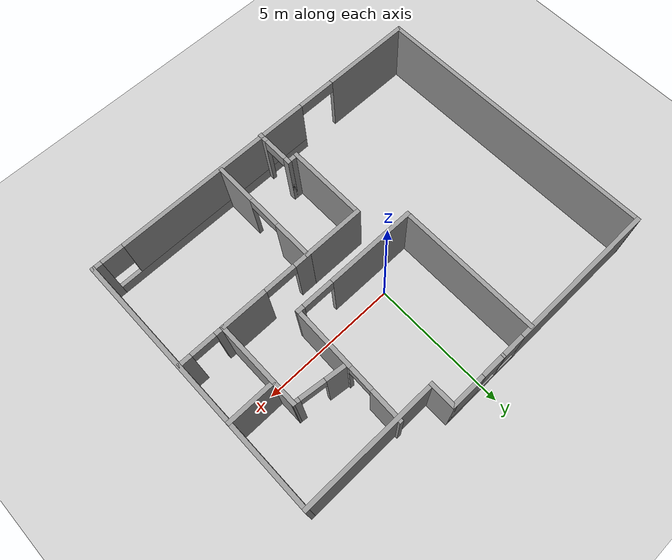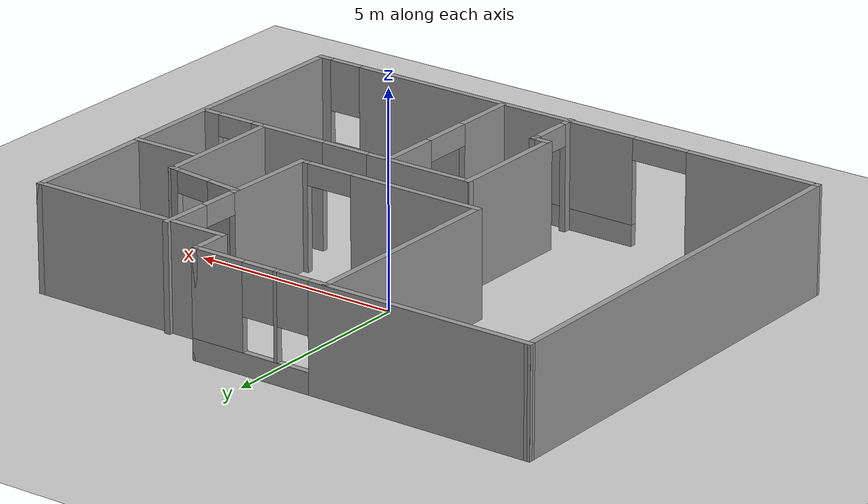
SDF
<sdf version="1.7">
 <world name="default">
  <light name="sun" type="directional">
   <pose>0 0 10 0 -0 0</pose>
   <diffuse>0.8 0.8 0.8 1</diffuse>
   <specular>0.2 0.2 0.2 1</specular>
   <attenuation>
    <range>1000</range>
    <constant>0.9</constant>
    <linear>0.01</linear>
    <quadratic>0.001</quadratic>
   </attenuation>
   <direction>-0.5 0.1 -0.9</direction>
   <spot><inner_angle>0</inner_angle><outer_angle>0</outer_angle><falloff>0</falloff></spot>
  </light>
  <model name="ground_plane">
   <static>1</static>
   <link name="link">
    <collision name="collision">
     <geometry><plane><normal>0 0 1</normal><size>100 100</size></plane></geometry>
     <surface>
      <contact><collide_bitmask>65535</collide_bitmask></contact>
      <friction><ode><mu>100</mu><mu2>50</mu2></ode></friction>
     </surface>
    </collision>
    <visual name="visual">
     <cast_shadows>0</cast_shadows>
     <geometry><plane><normal>0 0 1</normal><size>100 100</size></plane></geometry>
     <material>
      <script><uri>file://media/materials/scripts/gazebo.material</uri><name>Gazebo/Grey</name></script>
     </material>
    </visual>
   </link>
  </model>
  <gravity>0 0 -9.8</gravity>
  <magnetic_field>6e-06 2.3e-05 -4.2e-05</magnetic_field>
  <atmosphere type="adiabatic"/>
  <physics type="ode">
   <max_step_size>0.001</max_step_size>
   <real_time_factor>1</real_time_factor>
   <real_time_update_rate>1000</real_time_update_rate>
  </physics>
  <scene><ambient>0.4 0.4 0.4 1</ambient><background>0.7 0.7 0.7 1</background><shadows>1</shadows></scene>
  <spherical_coordinates>
   <surface_model>EARTH_WGS84</surface_model>
   <latitude_deg>0</latitude_deg>
   <longitude_deg>0</longitude_deg>
   <elevation>0</elevation>
   <heading_deg>0</heading_deg>
  </spherical_coordinates>
  <model name="map1">
   <pose>-0.129397 -0.877177 0 0 -0 0</pose>
   <link name="Wall_0">
    <pose>-2.42464 5.24297 0 0 -0 0</pose>
    <visual name="Wall_0_Visual_0">
     <pose>-1.5023 0 1.25 0 -0 0</pose>
     <geometry><box><size>5.49541 0.15 2.5</size></box></geometry>
     <material>
      <script><uri>file://media/materials/scripts/gazebo.material</uri><name>Gazebo/Grey</name></script>
      <ambient>1 1 1 1</ambient>
     </material>
     <meta><layer>0</layer></meta>
    </visual>
    <collision name="Wall_0_Collision_0">
     <geometry><box><size>5.49541 0.15 2.5</size></box></geometry>
     <pose>-1.5023 0 1.25 0 -0 0</pose>
    </collision>
    <visual name="Wall_0_Visual_1">
     <pose>2.7477 0 0.25 0 -0 0</pose>
     <geometry><box><size>3.00459 0.15 0.5</size></box></geometry>
     <material>
      <script><uri>file://media/materials/scripts/gazebo.material</uri><name>Gazebo/Grey</name></script>
      <ambient>1 1 1 1</ambient>
     </material>
     <meta><layer>0</layer></meta>
    </visual>
    <collision name="Wall_0_Collision_1">
     <geometry><box><size>3.00459 0.15 0.5</size></box></geometry>
     <pose>2.7477 0 0.25 0 -0 0</pose>
    </collision>
    <visual name="Wall_0_Visual_2">
     <pose>2.08896 0 1.5 0 -0 0</pose>
     <geometry><box><size>0.087117 0.15 2</size></box></geometry>
     <material>
      <script><uri>file://media/materials/scripts/gazebo.material</uri><name>Gazebo/Grey</name></script>
      <ambient>1 1 1 1</ambient>
     </material>
     <meta><layer>0</layer></meta>
    </visual>
    <collision name="Wall_0_Collision_2">
     <geometry><box><size>0.087117 0.15 2</size></box></geometry>
     <pose>2.08896 0 1.5 0 -0 0</pose>
    </collision>
    <visual name="Wall_0_Visual_3">
     <pose>3.59126 0 1.5 0 -0 0</pose>
     <geometry><box><size>1.31748 0.15 2</size></box></geometry>
     <material>
      <script><uri>file://media/materials/scripts/gazebo.material</uri><name>Gazebo/Grey</name></script>
      <ambient>1 1 1 1</ambient>
     </material>
     <meta><layer>0</layer></meta>
    </visual>
    <collision name="Wall_0_Collision_3">
     <geometry><box><size>1.31748 0.15 2</size></box></geometry>
     <pose>3.59126 0 1.5 0 -0 0</pose>
    </collision>
    <visual name="Wall_0_Visual_4">
     <pose>1.64541 0 1.9 0 -0 0</pose>
     <geometry><box><size>0.8 0.15 1.2</size></box></geometry>
     <material>
      <script><uri>file://media/materials/scripts/gazebo.material</uri><name>Gazebo/Grey</name></script>
      <ambient>1 1 1 1</ambient>
     </material>
     <meta><layer>0</layer></meta>
    </visual>
    <collision name="Wall_0_Collision_4">
     <geometry><box><size>0.8 0.15 1.2</size></box></geometry>
     <pose>1.64541 0 1.9 0 -0 0</pose>
    </collision>
    <visual name="Wall_0_Visual_5">
     <pose>2.53252 0 1.9 0 -0 0</pose>
     <geometry><box><size>0.8 0.15 1.2</size></box></geometry>
     <material>
      <script><uri>file://media/materials/scripts/gazebo.material</uri><name>Gazebo/Grey</name></script>
      <ambient>1 1 1 1</ambient>
     </material>
     <meta><layer>0</layer></meta>
    </visual>
    <collision name="Wall_0_Collision_5">
     <geometry><box><size>0.8 0.15 1.2</size></box></geometry>
     <pose>2.53252 0 1.9 0 -0 0</pose>
    </collision>
   </link>
   <link name="Wall_1">
    <collision name="Wall_1_Collision">
     <geometry><box><size>1 0.15 2.5</size></box></geometry>
     <pose>0 0 1.25 0 -0 0</pose>
    </collision>
    <visual name="Wall_1_Visual">
     <pose>0 0 1.25 0 -0 0</pose>
     <geometry><box><size>1 0.15 2.5</size></box></geometry>
     <material>
      <script><uri>file://media/materials/scripts/gazebo.material</uri><name>Gazebo/Grey</name></script>
      <ambient>1 1 1 1</ambient>
     </material>
     <meta><layer>0</layer></meta>
    </visual>
    <pose>1.75036 4.81797 0 0 -0 -1.5708</pose>
   </link>
   <link name="Wall_12">
    <collision name="Wall_12_Collision">
     <geometry><box><size>3.25 0.15 2.5</size></box></geometry>
     <pose>0 0 1.25 0 -0 0</pose>
    </collision>
    <visual name="Wall_12_Visual">
     <pose>0 0 1.25 0 -0 0</pose>
     <geometry><box><size>3.25 0.15 2.5</size></box></geometry>
     <material>
      <script><uri>file://media/materials/scripts/gazebo.material</uri><name>Gazebo/Grey</name></script>
      <ambient>1 1 1 1</ambient>
     </material>
     <meta><layer>0</layer></meta>
    </visual>
    <pose>4.94746 0.506312 0 0 -0 1.5708</pose>
   </link>
   <link name="Wall_14">
    <collision name="Wall_14_Collision">
     <geometry><box><size>1.75 0.15 2.5</size></box></geometry>
     <pose>0 0 1.25 0 -0 0</pose>
    </collision>
    <visual name="Wall_14_Visual">
     <pose>0 0 1.25 0 -0 0</pose>
     <geometry><box><size>1.75 0.15 2.5</size></box></geometry>
     <material>
      <script><uri>file://media/materials/scripts/gazebo.material</uri><name>Gazebo/Grey</name></script>
      <ambient>1 1 1 1</ambient>
     </material>
     <meta><layer>0</layer></meta>
    </visual>
    <pose>5.79405 1.20506 0 0 -0 0</pose>
   </link>
   <link name="Wall_2">
    <collision name="Wall_2_Collision">
     <geometry><box><size>5 0.15 2.5</size></box></geometry>
     <pose>0 0 1.25 0 -0 0</pose>
    </collision>
    <visual name="Wall_2_Visual">
     <pose>0 0 1.25 0 -0 0</pose>
     <geometry><box><size>5 0.15 2.5</size></box></geometry>
     <material>
      <script><uri>file://media/materials/scripts/gazebo.material</uri><name>Gazebo/Grey</name></script>
      <ambient>1 1 1 1</ambient>
     </material>
     <meta><layer>0</layer></meta>
    </visual>
    <pose>4.17536 4.39297 0 0 -0 0</pose>
   </link>
   <link name="Wall_26">
    <pose>5.74746 -1.04369 0 0 -0 0</pose>
    <visual name="Wall_26_Visual_0">
     <pose>-0.688017 0 1.25 0 -0 0</pose>
     <geometry><box><size>0.373966 0.15 2.5</size></box></geometry>
     <material>
      <script><uri>file://media/materials/scripts/gazebo.material</uri><name>Gazebo/Grey</name></script>
      <ambient>1 1 1 1</ambient>
     </material>
     <meta><layer>0</layer></meta>
    </visual>
    <collision name="Wall_26_Collision_0">
     <geometry><box><size>0.373966 0.15 2.5</size></box></geometry>
     <pose>-0.688017 0 1.25 0 -0 0</pose>
    </collision>
    <visual name="Wall_26_Visual_1">
     <pose>0.636983 0 1.25 0 -0 0</pose>
     <geometry><box><size>0.476034 0.15 2.5</size></box></geometry>
     <material>
      <script><uri>file://media/materials/scripts/gazebo.material</uri><name>Gazebo/Grey</name></script>
      <ambient>1 1 1 1</ambient>
     </material>
     <meta><layer>0</layer></meta>
    </visual>
    <collision name="Wall_26_Collision_1">
     <geometry><box><size>0.476034 0.15 2.5</size></box></geometry>
     <pose>0.636983 0 1.25 0 -0 0</pose>
    </collision>
    <visual name="Wall_26_Visual_2">
     <pose>-0.051034 0 2.25 0 -0 0</pose>
     <geometry><box><size>0.9 0.15 0.5</size></box></geometry>
     <material>
      <script><uri>file://media/materials/scripts/gazebo.material</uri><name>Gazebo/Grey</name></script>
      <ambient>1 1 1 1</ambient>
     </material>
     <meta><layer>0</layer></meta>
    </visual>
    <collision name="Wall_26_Collision_2">
     <geometry><box><size>0.9 0.15 0.5</size></box></geometry>
     <pose>-0.051034 0 2.25 0 -0 0</pose>
    </collision>
   </link>
   <link name="Wall_3">
    <collision name="Wall_3_Collision">
     <geometry><box><size>9.75 0.15 2.5</size></box></geometry>
     <pose>0 0 1.25 0 -0 0</pose>
    </collision>
    <visual name="Wall_3_Visual">
     <pose>0 0 1.25 0 -0 0</pose>
     <geometry><box><size>9.75 0.15 2.5</size></box></geometry>
     <material>
      <script><uri>file://media/materials/scripts/gazebo.material</uri><name>Gazebo/Grey</name></script>
      <ambient>1 1 1 1</ambient>
     </material>
     <meta><layer>0</layer></meta>
    </visual>
    <pose>6.60036 -0.407026 0 0 -0 -1.5708</pose>
   </link>
   <link name="Wall_32">
    <pose>3.07008 2.29651 0 0 -0 -1.59502</pose>
    <visual name="Wall_32_Visual_0">
     <pose>-1.64148 0 1.25 0 -0 0</pose>
     <geometry><box><size>1.23658 0.15 2.5</size></box></geometry>
     <material>
      <script><uri>file://media/materials/scripts/gazebo.material</uri><name>Gazebo/Grey</name></script>
      <ambient>1 1 1 1</ambient>
     </material>
     <meta><layer>0</layer></meta>
    </visual>
    <collision name="Wall_32_Collision_0">
     <geometry><box><size>1.23658 0.15 2.5</size></box></geometry>
     <pose>-1.64148 0 1.25 0 -0 0</pose>
    </collision>
    <visual name="Wall_32_Visual_1">
     <pose>1.06829 0 1.25 0 -0 0</pose>
     <geometry><box><size>2.38296 0.15 2.5</size></box></geometry>
     <material>
      <script><uri>file://media/materials/scripts/gazebo.material</uri><name>Gazebo/Grey</name></script>
      <ambient>1 1 1 1</ambient>
     </material>
     <meta><layer>0</layer></meta>
    </visual>
    <collision name="Wall_32_Collision_1">
     <geometry><box><size>2.38296 0.15 2.5</size></box></geometry>
     <pose>1.06829 0 1.25 0 -0 0</pose>
    </collision>
    <visual name="Wall_32_Visual_2">
     <pose>-0.573189 0 2.25 0 -0 0</pose>
     <geometry><box><size>0.9 0.15 0.5</size></box></geometry>
     <material>
      <script><uri>file://media/materials/scripts/gazebo.material</uri><name>Gazebo/Grey</name></script>
      <ambient>1 1 1 1</ambient>
     </material>
     <meta><layer>0</layer></meta>
    </visual>
    <collision name="Wall_32_Collision_2">
     <geometry><box><size>0.9 0.15 0.5</size></box></geometry>
     <pose>-0.573189 0 2.25 0 -0 0</pose>
    </collision>
   </link>
   <link name="Wall_34">
    <pose>4.01774 2.1666 0 0 -0 -0.118075</pose>
    <visual name="Wall_34_Visual_0">
     <pose>-0.589232 0 1.25 0 -0 0</pose>
     <geometry><box><size>0.844015 0.15 2.5</size></box></geometry>
     <material>
      <script><uri>file://media/materials/scripts/gazebo.material</uri><name>Gazebo/Grey</name></script>
      <ambient>1 1 1 1</ambient>
     </material>
     <meta><layer>0</layer></meta>
    </visual>
    <collision name="Wall_34_Collision_0">
     <geometry><box><size>0.844015 0.15 2.5</size></box></geometry>
     <pose>-0.589232 0 1.25 0 -0 0</pose>
    </collision>
    <visual name="Wall_34_Visual_1">
     <pose>0.872007 0 1.25 0 -0 0</pose>
     <geometry><box><size>0.278464 0.15 2.5</size></box></geometry>
     <material>
      <script><uri>file://media/materials/scripts/gazebo.material</uri><name>Gazebo/Grey</name></script>
      <ambient>1 1 1 1</ambient>
     </material>
     <meta><layer>0</layer></meta>
    </visual>
    <collision name="Wall_34_Collision_1">
     <geometry><box><size>0.278464 0.15 2.5</size></box></geometry>
     <pose>0.872007 0 1.25 0 -0 0</pose>
    </collision>
    <visual name="Wall_34_Visual_2">
     <pose>0.282775 0 2.25 0 -0 0</pose>
     <geometry><box><size>0.9 0.15 0.5</size></box></geometry>
     <material>
      <script><uri>file://media/materials/scripts/gazebo.material</uri><name>Gazebo/Grey</name></script>
      <ambient>1 1 1 1</ambient>
     </material>
     <meta><layer>0</layer></meta>
    </visual>
    <collision name="Wall_34_Collision_2">
     <geometry><box><size>0.9 0.15 0.5</size></box></geometry>
     <pose>0.282775 0 2.25 0 -0 0</pose>
    </collision>
   </link>
   <link name="Wall_36">
    <pose>3.27246 -1.04369 0 0 -0 3.14159</pose>
    <visual name="Wall_36_Visual_0">
     <pose>-0.891328 0 1.25 0 -0 0</pose>
     <geometry><box><size>1.71734 0.15 2.5</size></box></geometry>
     <material>
      <script><uri>file://media/materials/scripts/gazebo.material</uri><name>Gazebo/Grey</name></script>
      <ambient>1 1 1 1</ambient>
     </material>
     <meta><layer>0</layer></meta>
    </visual>
    <collision name="Wall_36_Collision_0">
     <geometry><box><size>1.71734 0.15 2.5</size></box></geometry>
     <pose>-0.891328 0 1.25 0 -0 0</pose>
    </collision>
    <visual name="Wall_36_Visual_1">
     <pose>1.44633 0 1.25 0 -0 0</pose>
     <geometry><box><size>0.607343 0.15 2.5</size></box></geometry>
     <material>
      <script><uri>file://media/materials/scripts/gazebo.material</uri><name>Gazebo/Grey</name></script>
      <ambient>1 1 1 1</ambient>
     </material>
     <meta><layer>0</layer></meta>
    </visual>
    <collision name="Wall_36_Collision_1">
     <geometry><box><size>0.607343 0.15 2.5</size></box></geometry>
     <pose>1.44633 0 1.25 0 -0 0</pose>
    </collision>
    <visual name="Wall_36_Visual_2">
     <pose>0.555001 0 2.25 0 -0 0</pose>
     <geometry><box><size>1.17531 0.15 0.5</size></box></geometry>
     <material>
      <script><uri>file://media/materials/scripts/gazebo.material</uri><name>Gazebo/Grey</name></script>
      <ambient>1 1 1 1</ambient>
     </material>
     <meta><layer>0</layer></meta>
    </visual>
    <collision name="Wall_36_Collision_2">
     <geometry><box><size>1.17531 0.15 0.5</size></box></geometry>
     <pose>0.555001 0 2.25 0 -0 0</pose>
    </collision>
   </link>
   <link name="Wall_37">
    <pose>1.59746 -3.09369 0 0 -0 -1.5708</pose>
    <visual name="Wall_37_Visual_0">
     <pose>-1.37649 0 1.25 0 -0 0</pose>
     <geometry><box><size>1.49701 0.15 2.5</size></box></geometry>
     <material>
      <script><uri>file://media/materials/scripts/gazebo.material</uri><name>Gazebo/Grey</name></script>
      <ambient>1 1 1 1</ambient>
     </material>
     <meta><layer>0</layer></meta>
    </visual>
    <collision name="Wall_37_Collision_0">
     <geometry><box><size>1.49701 0.15 2.5</size></box></geometry>
     <pose>-1.37649 0 1.25 0 -0 0</pose>
    </collision>
    <visual name="Wall_37_Visual_1">
     <pose>1.35592 0 1.25 0 -0 0</pose>
     <geometry><box><size>1.53817 0.15 2.5</size></box></geometry>
     <material>
      <script><uri>file://media/materials/scripts/gazebo.material</uri><name>Gazebo/Grey</name></script>
      <ambient>1 1 1 1</ambient>
     </material>
     <meta><layer>0</layer></meta>
    </visual>
    <collision name="Wall_37_Collision_1">
     <geometry><box><size>1.53817 0.15 2.5</size></box></geometry>
     <pose>1.35592 0 1.25 0 -0 0</pose>
    </collision>
    <visual name="Wall_37_Visual_2">
     <pose>-0.020576 0 2.25 0 -0 0</pose>
     <geometry><box><size>1.21482 0.15 0.5</size></box></geometry>
     <material>
      <script><uri>file://media/materials/scripts/gazebo.material</uri><name>Gazebo/Grey</name></script>
      <ambient>1 1 1 1</ambient>
     </material>
     <meta><layer>0</layer></meta>
    </visual>
    <collision name="Wall_37_Collision_2">
     <geometry><box><size>1.21482 0.15 0.5</size></box></geometry>
     <pose>-0.020576 0 2.25 0 -0 0</pose>
    </collision>
   </link>
   <link name="Wall_39">
    <collision name="Wall_39_Collision">
     <geometry><box><size>2.25 0.15 2.5</size></box></geometry>
     <pose>0 0 1.25 0 -0 0</pose>
    </collision>
    <visual name="Wall_39_Visual">
     <pose>0 0 1.25 0 -0 0</pose>
     <geometry><box><size>2.25 0.15 2.5</size></box></geometry>
     <material>
      <script><uri>file://media/materials/scripts/gazebo.material</uri><name>Gazebo/Grey</name></script>
      <ambient>1 1 1 1</ambient>
     </material>
     <meta><layer>0</layer></meta>
    </visual>
    <pose>0.54746 -1.04369 0 0 -0 3.14159</pose>
   </link>
   <link name="Wall_4">
    <pose>0.050357 -5.20703 0 0 -0 3.14159</pose>
    <visual name="Wall_4_Visual_0">
     <pose>-6.43204 0 1.25 0 -0 0</pose>
     <geometry><box><size>0.385923 0.15 2.5</size></box></geometry>
     <material>
      <script><uri>file://media/materials/scripts/gazebo.material</uri><name>Gazebo/Grey</name></script>
      <ambient>1 1 1 1</ambient>
     </material>
     <meta><layer>0</layer></meta>
    </visual>
    <collision name="Wall_4_Collision_0">
     <geometry><box><size>0.385923 0.15 2.5</size></box></geometry>
     <pose>-6.43204 0 1.25 0 -0 0</pose>
    </collision>
    <visual name="Wall_4_Visual_1">
     <pose>4.96088 0 1.25 0 -0 0</pose>
     <geometry><box><size>3.32824 0.15 2.5</size></box></geometry>
     <material>
      <script><uri>file://media/materials/scripts/gazebo.material</uri><name>Gazebo/Grey</name></script>
      <ambient>1 1 1 1</ambient>
     </material>
     <meta><layer>0</layer></meta>
    </visual>
    <collision name="Wall_4_Collision_1">
     <geometry><box><size>3.32824 0.15 2.5</size></box></geometry>
     <pose>4.96088 0 1.25 0 -0 0</pose>
    </collision>
    <visual name="Wall_4_Visual_2">
     <pose>-2.16252 0 0.25 0 -0 0</pose>
     <geometry><box><size>8.15311 0.15 0.5</size></box></geometry>
     <material>
      <script><uri>file://media/materials/scripts/gazebo.material</uri><name>Gazebo/Grey</name></script>
      <ambient>1 1 1 1</ambient>
     </material>
     <meta><layer>0</layer></meta>
    </visual>
    <collision name="Wall_4_Collision_2">
     <geometry><box><size>8.15311 0.15 0.5</size></box></geometry>
     <pose>-2.16252 0 0.25 0 -0 0</pose>
    </collision>
    <visual name="Wall_4_Visual_3">
     <pose>-1.76252 0 1.5 0 -0 0</pose>
     <geometry><box><size>7.35311 0.15 2</size></box></geometry>
     <material>
      <script><uri>file://media/materials/scripts/gazebo.material</uri><name>Gazebo/Grey</name></script>
      <ambient>1 1 1 1</ambient>
     </material>
     <meta><layer>0</layer></meta>
    </visual>
    <collision name="Wall_4_Collision_3">
     <geometry><box><size>7.35311 0.15 2</size></box></geometry>
     <pose>-1.76252 0 1.5 0 -0 0</pose>
    </collision>
    <visual name="Wall_4_Visual_4">
     <pose>-5.83908 0 1.9 0 -0 0</pose>
     <geometry><box><size>0.8 0.15 1.2</size></box></geometry>
     <material>
      <script><uri>file://media/materials/scripts/gazebo.material</uri><name>Gazebo/Grey</name></script>
      <ambient>1 1 1 1</ambient>
     </material>
     <meta><layer>0</layer></meta>
    </visual>
    <collision name="Wall_4_Collision_4">
     <geometry><box><size>0.8 0.15 1.2</size></box></geometry>
     <pose>-5.83908 0 1.9 0 -0 0</pose>
    </collision>
    <visual name="Wall_4_Visual_5">
     <pose>2.60539 0 2.25 0 -0 0</pose>
     <geometry><box><size>1.38273 0.15 0.5</size></box></geometry>
     <material>
      <script><uri>file://media/materials/scripts/gazebo.material</uri><name>Gazebo/Grey</name></script>
      <ambient>1 1 1 1</ambient>
     </material>
     <meta><layer>0</layer></meta>
    </visual>
    <collision name="Wall_4_Collision_5">
     <geometry><box><size>1.38273 0.15 0.5</size></box></geometry>
     <pose>2.60539 0 2.25 0 -0 0</pose>
    </collision>
   </link>
   <link name="Wall_40">
    <collision name="Wall_40_Collision">
     <geometry><box><size>3 0.15 2.5</size></box></geometry>
     <pose>0 0 1.25 0 -0 0</pose>
    </collision>
    <visual name="Wall_40_Visual">
     <pose>0 0 1.25 0 -0 0</pose>
     <geometry><box><size>3 0.15 2.5</size></box></geometry>
     <material>
      <script><uri>file://media/materials/scripts/gazebo.material</uri><name>Gazebo/Grey</name></script>
      <ambient>1 1 1 1</ambient>
     </material>
     <meta><layer>0</layer></meta>
    </visual>
    <pose>-0.50254 -2.46869 0 0 -0 -1.5708</pose>
   </link>
   <link name="Wall_41">
    <collision name="Wall_41_Collision">
     <geometry><box><size>0.5 0.15 2.5</size></box></geometry>
     <pose>0 0 1.25 0 -0 0</pose>
    </collision>
    <visual name="Wall_41_Visual">
     <pose>0 0 1.25 0 -0 0</pose>
     <geometry><box><size>0.5 0.15 2.5</size></box></geometry>
     <material>
      <script><uri>file://media/materials/scripts/gazebo.material</uri><name>Gazebo/Grey</name></script>
      <ambient>1 1 1 1</ambient>
     </material>
     <meta><layer>0</layer></meta>
    </visual>
    <pose>-0.32754 -3.89369 0 0 -0 0</pose>
   </link>
   <link name="Wall_42">
    <pose>-0.15254 -4.56869 0 0 -0 -1.5708</pose>
    <visual name="Wall_42_Visual_0">
     <pose>-0.627185 0 1.25 0 -0 0</pose>
     <geometry><box><size>0.24563 0.15 2.5</size></box></geometry>
     <material>
      <script><uri>file://media/materials/scripts/gazebo.material</uri><name>Gazebo/Grey</name></script>
      <ambient>1 1 1 1</ambient>
     </material>
     <meta><layer>0</layer></meta>
    </visual>
    <collision name="Wall_42_Collision_0">
     <geometry><box><size>0.24563 0.15 2.5</size></box></geometry>
     <pose>-0.627185 0 1.25 0 -0 0</pose>
    </collision>
    <visual name="Wall_42_Visual_1">
     <pose>0.572815 0 1.25 0 -0 0</pose>
     <geometry><box><size>0.35437 0.15 2.5</size></box></geometry>
     <material>
      <script><uri>file://media/materials/scripts/gazebo.material</uri><name>Gazebo/Grey</name></script>
      <ambient>1 1 1 1</ambient>
     </material>
     <meta><layer>0</layer></meta>
    </visual>
    <collision name="Wall_42_Collision_1">
     <geometry><box><size>0.35437 0.15 2.5</size></box></geometry>
     <pose>0.572815 0 1.25 0 -0 0</pose>
    </collision>
    <visual name="Wall_42_Visual_2">
     <pose>-0.05437 0 2.25 0 -0 0</pose>
     <geometry><box><size>0.9 0.15 0.5</size></box></geometry>
     <material>
      <script><uri>file://media/materials/scripts/gazebo.material</uri><name>Gazebo/Grey</name></script>
      <ambient>1 1 1 1</ambient>
     </material>
     <meta><layer>0</layer></meta>
    </visual>
    <collision name="Wall_42_Collision_2">
     <geometry><box><size>0.9 0.15 0.5</size></box></geometry>
     <pose>-0.05437 0 2.25 0 -0 0</pose>
    </collision>
   </link>
   <link name="Wall_5">
    <collision name="Wall_5_Collision">
     <geometry><box><size>10.6005 0.15 2.5</size></box></geometry>
     <pose>0 0 1.25 0 -0 0</pose>
    </collision>
    <visual name="Wall_5_Visual">
     <pose>0 0 1.25 0 -0 0</pose>
     <geometry><box><size>10.6005 0.15 2.5</size></box></geometry>
     <material>
      <script><uri>file://media/materials/scripts/gazebo.material</uri><name>Gazebo/Grey</name></script>
      <ambient>1 1 1 1</ambient>
     </material>
     <meta><layer>0</layer></meta>
    </visual>
    <pose>-6.54964 0.017974 0 0 -0 1.58037</pose>
   </link>
   <link name="Wall_7">
    <collision name="Wall_7_Collision">
     <geometry><box><size>5.25 0.15 2.5</size></box></geometry>
     <pose>0 0 1.25 0 -0 0</pose>
    </collision>
    <visual name="Wall_7_Visual">
     <pose>0 0 1.25 0 -0 0</pose>
     <geometry><box><size>5.25 0.15 2.5</size></box></geometry>
     <material>
      <script><uri>file://media/materials/scripts/gazebo.material</uri><name>Gazebo/Grey</name></script>
      <ambient>1 1 1 1</ambient>
     </material>
     <meta><layer>0</layer></meta>
    </visual>
    <pose>-1.58285 2.66238 0 0 -0 -1.5708</pose>
   </link>
   <link name="Wall_8">
    <pose>0.717155 0.112384 0 0 -0 0</pose>
    <visual name="Wall_8_Visual_0">
     <pose>-0.710722 0 1.25 0 -0 0</pose>
     <geometry><box><size>3.32856 0.15 2.5</size></box></geometry>
     <material>
      <script><uri>file://media/materials/scripts/gazebo.material</uri><name>Gazebo/Grey</name></script>
      <ambient>1 1 1 1</ambient>
     </material>
     <meta><layer>0</layer></meta>
    </visual>
    <collision name="Wall_8_Collision_0">
     <geometry><box><size>3.32856 0.15 2.5</size></box></geometry>
     <pose>-0.710722 0 1.25 0 -0 0</pose>
    </collision>
    <visual name="Wall_8_Visual_1">
     <pose>2.23664 0 1.25 0 -0 0</pose>
     <geometry><box><size>0.276721 0.15 2.5</size></box></geometry>
     <material>
      <script><uri>file://media/materials/scripts/gazebo.material</uri><name>Gazebo/Grey</name></script>
      <ambient>1 1 1 1</ambient>
     </material>
     <meta><layer>0</layer></meta>
    </visual>
    <collision name="Wall_8_Collision_1">
     <geometry><box><size>0.276721 0.15 2.5</size></box></geometry>
     <pose>2.23664 0 1.25 0 -0 0</pose>
    </collision>
    <visual name="Wall_8_Visual_2">
     <pose>1.52592 0 2.25 0 -0 0</pose>
     <geometry><box><size>1.14472 0.15 0.5</size></box></geometry>
     <material>
      <script><uri>file://media/materials/scripts/gazebo.material</uri><name>Gazebo/Grey</name></script>
      <ambient>1 1 1 1</ambient>
     </material>
     <meta><layer>0</layer></meta>
    </visual>
    <collision name="Wall_8_Collision_2">
     <geometry><box><size>1.14472 0.15 0.5</size></box></geometry>
     <pose>1.52592 0 2.25 0 -0 0</pose>
    </collision>
   </link>
   <static>1</static>
  </model>
 </world>
</sdf>
